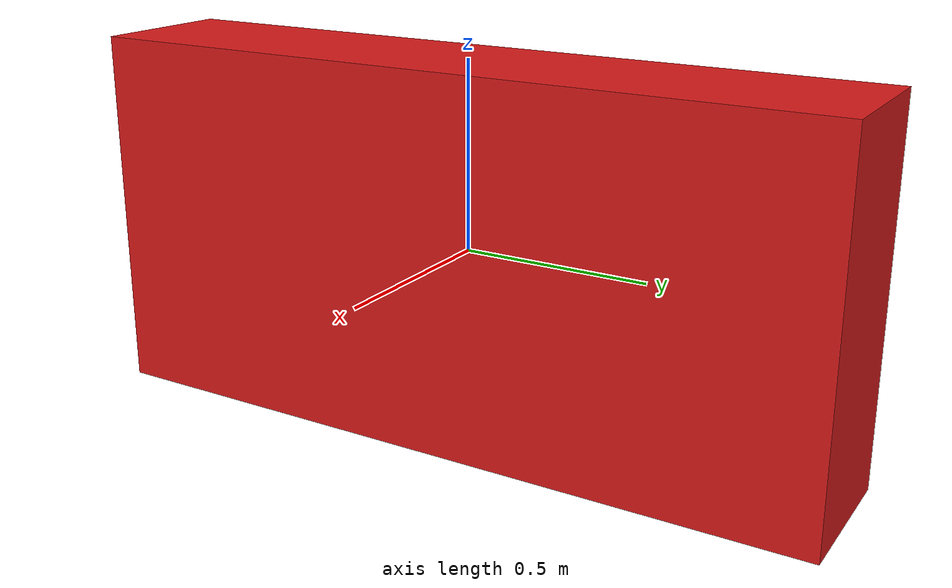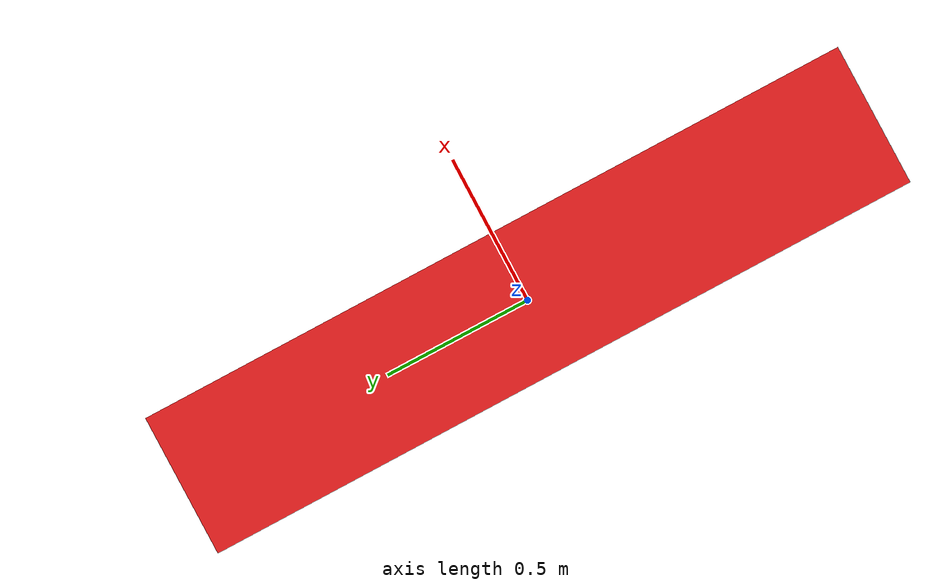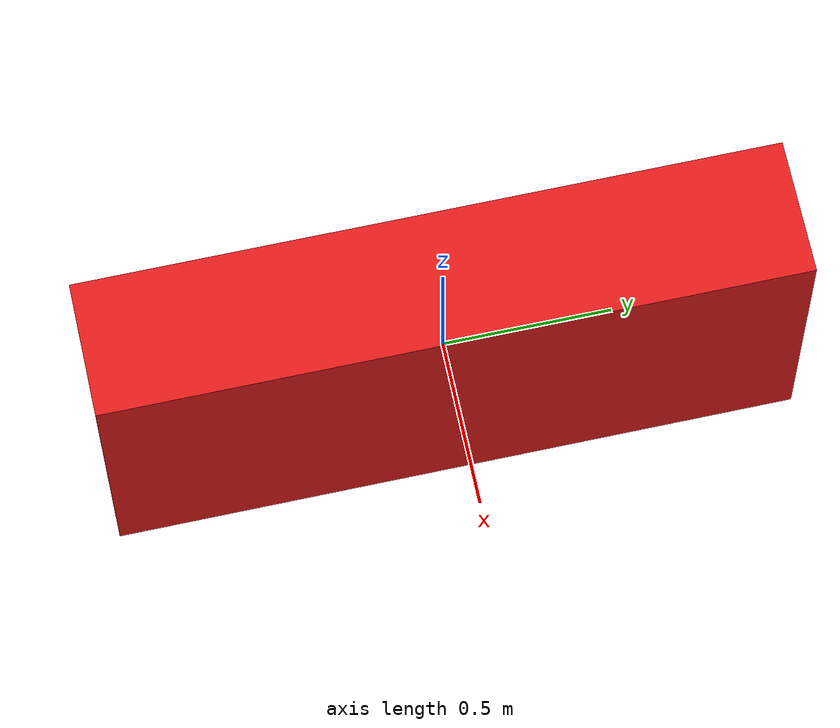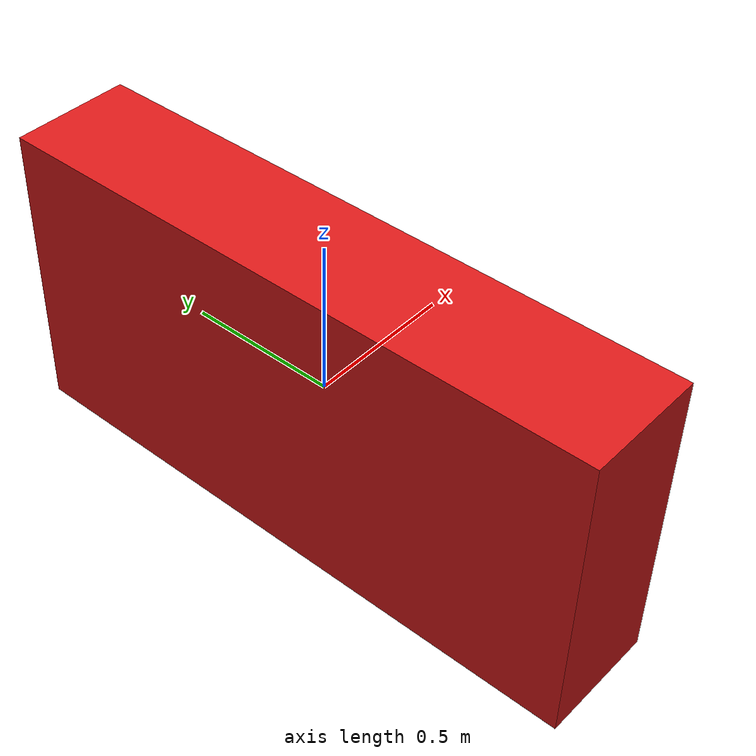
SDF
<?xml version="1.0"?>
<sdf version="1.7">
  <model name="dynnav_parallel_corridor_blocker">
    <static>true</static>
    <link name="blocker_link">
      <collision name="collision">
        <geometry><box><size>0.40 2.05 1.00</size></box></geometry>
      </collision>
      <visual name="visual">
        <geometry><box><size>0.40 2.05 1.00</size></box></geometry>
        <material>
          <ambient>0.85 0.10 0.10 1.0</ambient>
          <diffuse>0.85 0.10 0.10 1.0</diffuse>
        </material>
      </visual>
    </link>
  </model>
</sdf>
